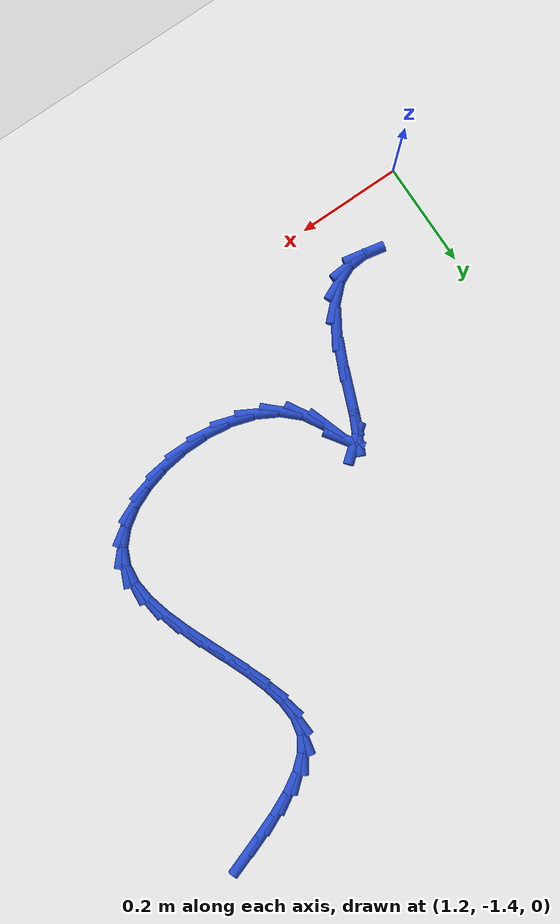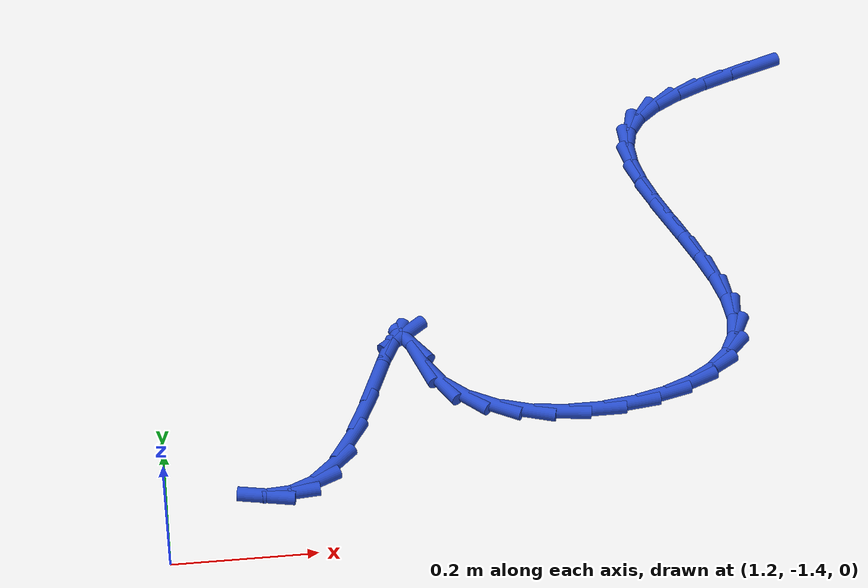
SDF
<sdf version="1.6">
 <world name="default">
  <model name="ground_plane">
   <static>1</static>
   <link name="link">
    <collision name="collision">
     <geometry><plane><normal>0 0 1</normal><size>100 100</size></plane></geometry>
     <surface><friction><ode><mu>100</mu><mu2>50</mu2></ode></friction></surface>
    </collision>
    <visual name="visual">
     <cast_shadows>0</cast_shadows>
     <geometry><plane><normal>0 0 1</normal><size>100 100</size></plane></geometry>
     <material>
      <script><uri>file://media/materials/scripts/gazebo.material</uri><name>Gazebo/WhiteGlow</name></script>
     </material>
    </visual>
   </link>
  </model>
  <model name="line">
   <link name="link_146">
    <pose>2.1206640574794777 -0.520752498557589 0.01 0 1.57 0.34572873803238874</pose>
    <collision name="collision">
     <geometry><cylinder><radius>0.01</radius><length>0.08</length></cylinder></geometry>
    </collision>
    <visual name="visual">
     <material>
      <script><name>Gazebo/Blue</name><uri>file://media/materials/scripts/gazebo.material</uri></script>
     </material>
     <geometry><cylinder><radius>0.01</radius><length>0.08</length></cylinder></geometry>
    </visual>
   </link>
   <link name="link_147">
    <pose>2.077398388420993 -0.5363366026530292 0.01 0 1.57 0.37257058284670214</pose>
    <collision name="collision">
     <geometry><cylinder><radius>0.01</radius><length>0.08</length></cylinder></geometry>
    </collision>
    <visual name="visual">
     <material>
      <script><name>Gazebo/Blue</name><uri>file://media/materials/scripts/gazebo.material</uri></script>
     </material>
     <geometry><cylinder><radius>0.01</radius><length>0.08</length></cylinder></geometry>
    </visual>
   </link>
   <link name="link_148">
    <pose>2.035174207362797 -0.552838801307023 0.01 0 1.57 0.43437580071152454</pose>
    <collision name="collision">
     <geometry><cylinder><radius>0.01</radius><length>0.08</length></cylinder></geometry>
    </collision>
    <visual name="visual">
     <material>
      <script><name>Gazebo/Blue</name><uri>file://media/materials/scripts/gazebo.material</uri></script>
     </material>
     <geometry><cylinder><radius>0.01</radius><length>0.08</length></cylinder></geometry>
    </visual>
   </link>
   <link name="link_149">
    <pose>1.9960672933489607 -0.5709815891914061 0.01 0 1.57 0.5438283993382921</pose>
    <collision name="collision">
     <geometry><cylinder><radius>0.01</radius><length>0.08</length></cylinder></geometry>
    </collision>
    <visual name="visual">
     <material>
      <script><name>Gazebo/Blue</name><uri>file://media/materials/scripts/gazebo.material</uri></script>
     </material>
     <geometry><cylinder><radius>0.01</radius><length>0.08</length></cylinder></geometry>
    </visual>
   </link>
   <link name="link_150">
    <pose>1.962153425423553 -0.5914874609780127 0.01 0 1.57 0.7246885115952378</pose>
    <collision name="collision">
     <geometry><cylinder><radius>0.01</radius><length>0.08</length></cylinder></geometry>
    </collision>
    <visual name="visual">
     <material>
      <script><name>Gazebo/Blue</name><uri>file://media/materials/scripts/gazebo.material</uri></script>
     </material>
     <geometry><cylinder><radius>0.01</radius><length>0.08</length></cylinder></geometry>
    </visual>
   </link>
   <link name="link_151">
    <pose>1.9355083826306454 -0.6150789113386786 0.01 0 1.57 1.0074835304742966</pose>
    <collision name="collision">
     <geometry><cylinder><radius>0.01</radius><length>0.08</length></cylinder></geometry>
    </collision>
    <visual name="visual">
     <material>
      <script><name>Gazebo/Blue</name><uri>file://media/materials/scripts/gazebo.material</uri></script>
     </material>
     <geometry><cylinder><radius>0.01</radius><length>0.08</length></cylinder></geometry>
    </visual>
   </link>
   <link name="link_152">
    <pose>1.9182043686012373 -0.6424771438342691 0.01 0 1.57 1.3538564457280344</pose>
    <collision name="collision">
     <geometry><cylinder><radius>0.01</radius><length>0.08</length></cylinder></geometry>
    </collision>
    <visual name="visual">
     <material>
      <script><name>Gazebo/Blue</name><uri>file://media/materials/scripts/gazebo.material</uri></script>
     </material>
     <geometry><cylinder><radius>0.01</radius><length>0.08</length></cylinder></geometry>
    </visual>
   </link>
   <link name="link_153">
    <pose>1.9112520489966103 -0.674020031962805 0.01 0 1.57 -1.517537073689646</pose>
    <collision name="collision">
     <geometry><cylinder><radius>0.01</radius><length>0.08</length></cylinder></geometry>
    </collision>
    <visual name="visual">
     <material>
      <script><name>Gazebo/Blue</name><uri>file://media/materials/scripts/gazebo.material</uri></script>
     </material>
     <geometry><cylinder><radius>0.01</radius><length>0.08</length></cylinder></geometry>
    </visual>
   </link>
   <link name="link_154">
    <pose>1.9131236863456618 -0.7091288110425901 0.01 0 1.57 -1.3430973453825548</pose>
    <collision name="collision">
     <geometry><cylinder><radius>0.01</radius><length>0.08</length></cylinder></geometry>
    </collision>
    <visual name="visual">
     <material>
      <script><name>Gazebo/Blue</name><uri>file://media/materials/scripts/gazebo.material</uri></script>
     </material>
     <geometry><cylinder><radius>0.01</radius><length>0.08</length></cylinder></geometry>
    </visual>
   </link>
   <link name="link_155">
    <pose>1.921920093076768 -0.7470905827156611 0.01 0 1.57 -1.2388759577727098</pose>
    <collision name="collision">
     <geometry><cylinder><radius>0.01</radius><length>0.08</length></cylinder></geometry>
    </collision>
    <visual name="visual">
     <material>
      <script><name>Gazebo/Blue</name><uri>file://media/materials/scripts/gazebo.material</uri></script>
     </material>
     <geometry><cylinder><radius>0.01</radius><length>0.08</length></cylinder></geometry>
    </visual>
   </link>
   <link name="link_156">
    <pose>1.9357420816183069 -0.7871924486240528 0.01 0 1.57 -1.183319060407565</pose>
    <collision name="collision">
     <geometry><cylinder><radius>0.01</radius><length>0.08</length></cylinder></geometry>
    </collision>
    <visual name="visual">
     <material>
      <script><name>Gazebo/Blue</name><uri>file://media/materials/scripts/gazebo.material</uri></script>
     </material>
     <geometry><cylinder><radius>0.01</radius><length>0.08</length></cylinder></geometry>
    </visual>
   </link>
   <link name="link_157">
    <pose>1.9526904643986547 -0.8287215104098017 0.01 0 1.57 -1.164479626951197</pose>
    <collision name="collision">
     <geometry><cylinder><radius>0.01</radius><length>0.08</length></cylinder></geometry>
    </collision>
    <visual name="visual">
     <material>
      <script><name>Gazebo/Blue</name><uri>file://media/materials/scripts/gazebo.material</uri></script>
     </material>
     <geometry><cylinder><radius>0.01</radius><length>0.08</length></cylinder></geometry>
    </visual>
   </link>
   <link name="link_158">
    <pose>1.97086605384619 -0.8709648697149444 0.01 0 1.57 -1.177991039458098</pose>
    <collision name="collision">
     <geometry><cylinder><radius>0.01</radius><length>0.08</length></cylinder></geometry>
    </collision>
    <visual name="visual">
     <material>
      <script><name>Gazebo/Blue</name><uri>file://media/materials/scripts/gazebo.material</uri></script>
     </material>
     <geometry><cylinder><radius>0.01</radius><length>0.08</length></cylinder></geometry>
    </visual>
   </link>
   <link name="link_159">
    <pose>1.988369662389289 -0.9132096281815172 0.01 0 1.57 -1.2256571544714898</pose>
    <collision name="collision">
     <geometry><cylinder><radius>0.01</radius><length>0.08</length></cylinder></geometry>
    </collision>
    <visual name="visual">
     <material>
      <script><name>Gazebo/Blue</name><uri>file://media/materials/scripts/gazebo.material</uri></script>
     </material>
     <geometry><cylinder><radius>0.01</radius><length>0.08</length></cylinder></geometry>
    </visual>
   </link>
   <link name="link_160">
    <pose>2.00330210245633 -0.9547428874515559 0.01 0 1.57 -1.3156395511689294</pose>
    <collision name="collision">
     <geometry><cylinder><radius>0.01</radius><length>0.08</length></cylinder></geometry>
    </collision>
    <visual name="visual">
     <material>
      <script><name>Gazebo/Blue</name><uri>file://media/materials/scripts/gazebo.material</uri></script>
     </material>
     <geometry><cylinder><radius>0.01</radius><length>0.08</length></cylinder></geometry>
    </visual>
   </link>
   <link name="link_161">
    <pose>2.01376418647569 -0.9948517491670973 0.01 0 1.57 -1.4634316951855642</pose>
    <collision name="collision">
     <geometry><cylinder><radius>0.01</radius><length>0.08</length></cylinder></geometry>
    </collision>
    <visual name="visual">
     <material>
      <script><name>Gazebo/Blue</name><uri>file://media/materials/scripts/gazebo.material</uri></script>
     </material>
     <geometry><cylinder><radius>0.01</radius><length>0.08</length></cylinder></geometry>
    </visual>
   </link>
   <link name="link_162">
    <pose>2.0178567268757455 -1.032823314970178 0.01 0 1.57 1.4524446346220885</pose>
    <collision name="collision">
     <geometry><cylinder><radius>0.01</radius><length>0.08</length></cylinder></geometry>
    </collision>
    <visual name="visual">
     <material>
      <script><name>Gazebo/Blue</name><uri>file://media/materials/scripts/gazebo.material</uri></script>
     </material>
     <geometry><cylinder><radius>0.01</radius><length>0.08</length></cylinder></geometry>
    </visual>
   </link>
   <link name="link_163">
    <pose>2.0136805360848746 -1.0679446865028321 0.01 0 1.57 1.144534740268404</pose>
    <collision name="collision">
     <geometry><cylinder><radius>0.01</radius><length>0.08</length></cylinder></geometry>
    </collision>
    <visual name="visual">
     <material>
      <script><name>Gazebo/Blue</name><uri>file://media/materials/scripts/gazebo.material</uri></script>
     </material>
     <geometry><cylinder><radius>0.01</radius><length>0.08</length></cylinder></geometry>
    </visual>
   </link>
   <link name="link_164">
    <pose>1.999349362781641 -1.099503916649567 0.01 0 1.57 0.8293419382922201</pose>
    <collision name="collision">
     <geometry><cylinder><radius>0.01</radius><length>0.08</length></cylinder></geometry>
    </collision>
    <visual name="visual">
     <material>
      <script><name>Gazebo/Blue</name><uri>file://media/materials/scripts/gazebo.material</uri></script>
     </material>
     <geometry><cylinder><radius>0.01</radius><length>0.08</length></cylinder></geometry>
    </visual>
   </link>
   <link name="link_165">
    <pose>1.974275292103041 -1.126884528988578 0.01 0 1.57 0.5897148592662591</pose>
    <collision name="collision">
     <geometry><cylinder><radius>0.01</radius><length>0.08</length></cylinder></geometry>
    </collision>
    <visual name="visual">
     <material>
      <script><name>Gazebo/Blue</name><uri>file://media/materials/scripts/gazebo.material</uri></script>
     </material>
     <geometry><cylinder><radius>0.01</radius><length>0.08</length></cylinder></geometry>
    </visual>
   </link>
   <link name="link_166">
    <pose>1.9402598035749328 -1.1496457466544596 0.01 0 1.57 0.408851442265392</pose>
    <collision name="collision">
     <geometry><cylinder><radius>0.01</radius><length>0.08</length></cylinder></geometry>
    </collision>
    <visual name="visual">
     <material>
      <script><name>Gazebo/Blue</name><uri>file://media/materials/scripts/gazebo.material</uri></script>
     </material>
     <geometry><cylinder><radius>0.01</radius><length>0.08</length></cylinder></geometry>
    </visual>
   </link>
   <link name="link_167">
    <pose>1.899361314380405 -1.1673656862020843 0.01 0 1.57 0.26190789384535657</pose>
    <collision name="collision">
     <geometry><cylinder><radius>0.01</radius><length>0.08</length></cylinder></geometry>
    </collision>
    <visual name="visual">
     <material>
      <script><name>Gazebo/Blue</name><uri>file://media/materials/scripts/gazebo.material</uri></script>
     </material>
     <geometry><cylinder><radius>0.01</radius><length>0.08</length></cylinder></geometry>
    </visual>
   </link>
   <link name="link_168">
    <pose>1.8536382417025445 -1.1796224641863242 0.01 0 1.57 0.1306564969552809</pose>
    <collision name="collision">
     <geometry><cylinder><radius>0.01</radius><length>0.08</length></cylinder></geometry>
    </collision>
    <visual name="visual">
     <material>
      <script><name>Gazebo/Blue</name><uri>file://media/materials/scripts/gazebo.material</uri></script>
     </material>
     <geometry><cylinder><radius>0.01</radius><length>0.08</length></cylinder></geometry>
    </visual>
   </link>
   <link name="link_169">
    <pose>1.8051490027244401 -1.185994197162051 0.01 0 1.57 0.001317244959784238</pose>
    <collision name="collision">
     <geometry><cylinder><radius>0.01</radius><length>0.08</length></cylinder></geometry>
    </collision>
    <visual name="visual">
     <material>
      <script><name>Gazebo/Blue</name><uri>file://media/materials/scripts/gazebo.material</uri></script>
     </material>
     <geometry><cylinder><radius>0.01</radius><length>0.08</length></cylinder></geometry>
    </visual>
   </link>
   <link name="link_170">
    <pose>1.7559520146291776 -1.1860590016841375 0.01 0 1.57 -0.13838913685248053</pose>
    <collision name="collision">
     <geometry><cylinder><radius>0.01</radius><length>0.08</length></cylinder></geometry>
    </collision>
    <visual name="visual">
     <material>
      <script><name>Gazebo/Blue</name><uri>file://media/materials/scripts/gazebo.material</uri></script>
     </material>
     <geometry><cylinder><radius>0.01</radius><length>0.08</length></cylinder></geometry>
    </visual>
   </link>
   <link name="link_171">
    <pose>1.7081056945998487 -1.1793949943074555 0.01 0 1.57 -0.30140944871509584</pose>
    <collision name="collision">
     <geometry><cylinder><radius>0.01</radius><length>0.08</length></cylinder></geometry>
    </collision>
    <visual name="visual">
     <material>
      <script><name>Gazebo/Blue</name><uri>file://media/materials/scripts/gazebo.material</uri></script>
     </material>
     <geometry><cylinder><radius>0.01</radius><length>0.08</length></cylinder></geometry>
    </visual>
   </link>
   <link name="link_172">
    <pose>1.6636684598195388 -1.165580291586877 0.01 0 1.57 -0.5019350937671013</pose>
    <collision name="collision">
     <geometry><cylinder><radius>0.01</radius><length>0.08</length></cylinder></geometry>
    </collision>
    <visual name="visual">
     <material>
      <script><name>Gazebo/Blue</name><uri>file://media/materials/scripts/gazebo.material</uri></script>
     </material>
     <geometry><cylinder><radius>0.01</radius><length>0.08</length></cylinder></geometry>
    </visual>
   </link>
   <link name="link_173">
    <pose>1.6246987274713365 -1.1441930100772744 0.01 0 1.57 -0.7515097836951473</pose>
    <collision name="collision">
     <geometry><cylinder><radius>0.01</radius><length>0.08</length></cylinder></geometry>
    </collision>
    <visual name="visual">
     <material>
      <script><name>Gazebo/Blue</name><uri>file://media/materials/scripts/gazebo.material</uri></script>
     </material>
     <geometry><cylinder><radius>0.01</radius><length>0.08</length></cylinder></geometry>
    </visual>
   </link>
   <link name="link_174">
    <pose>1.593254914738329 -1.1148112663335201 0.01 0 1.57 -1.0458649811744283</pose>
    <collision name="collision">
     <geometry><cylinder><radius>0.01</radius><length>0.08</length></cylinder></geometry>
    </collision>
    <visual name="visual">
     <material>
      <script><name>Gazebo/Blue</name><uri>file://media/materials/scripts/gazebo.material</uri></script>
     </material>
     <geometry><cylinder><radius>0.01</radius><length>0.08</length></cylinder></geometry>
    </visual>
   </link>
   <link name="link_175">
    <pose>1.5713832930697207 -1.0770448198372078 0.01 0 1.57 -1.2450065934365189</pose>
    <collision name="collision">
     <geometry><cylinder><radius>0.01</radius><length>0.08</length></cylinder></geometry>
    </collision>
    <visual name="visual">
     <material>
      <script><name>Gazebo/Blue</name><uri>file://media/materials/scripts/gazebo.material</uri></script>
     </material>
     <geometry><cylinder><radius>0.01</radius><length>0.08</length></cylinder></geometry>
    </visual>
   </link>
   <link name="link_176">
    <pose>1.558220871534311 -1.03808284661152 0.01 0 1.57 -0.9743026126118307</pose>
    <collision name="collision">
     <geometry><cylinder><radius>0.01</radius><length>0.08</length></cylinder></geometry>
    </collision>
    <visual name="visual">
     <material>
      <script><name>Gazebo/Blue</name><uri>file://media/materials/scripts/gazebo.material</uri></script>
     </material>
     <geometry><cylinder><radius>0.01</radius><length>0.08</length></cylinder></geometry>
    </visual>
   </link>
   <link name="link_177">
    <pose>1.5466035208603726 -1.0209733898539795 0.01 0 1.57 0.6815107495792929</pose>
    <collision name="collision">
     <geometry><cylinder><radius>0.01</radius><length>0.08</length></cylinder></geometry>
    </collision>
    <visual name="visual">
     <material>
      <script><name>Gazebo/Blue</name><uri>file://media/materials/scripts/gazebo.material</uri></script>
     </material>
     <geometry><cylinder><radius>0.01</radius><length>0.08</length></cylinder></geometry>
    </visual>
   </link>
   <link name="link_178">
    <pose>1.5330820834319487 -1.0319414811211347 0.01 0 1.57 1.115050319586273</pose>
    <collision name="collision">
     <geometry><cylinder><radius>0.01</radius><length>0.08</length></cylinder></geometry>
    </collision>
    <visual name="visual">
     <material>
      <script><name>Gazebo/Blue</name><uri>file://media/materials/scripts/gazebo.material</uri></script>
     </material>
     <geometry><cylinder><radius>0.01</radius><length>0.08</length></cylinder></geometry>
    </visual>
   </link>
   <link name="link_179">
    <pose>1.5174226701260995 -1.063888927259134 0.01 0 1.57 1.1951782070708608</pose>
    <collision name="collision">
     <geometry><cylinder><radius>0.01</radius><length>0.08</length></cylinder></geometry>
    </collision>
    <visual name="visual">
     <material>
      <script><name>Gazebo/Blue</name><uri>file://media/materials/scripts/gazebo.material</uri></script>
     </material>
     <geometry><cylinder><radius>0.01</radius><length>0.08</length></cylinder></geometry>
    </visual>
   </link>
   <link name="link_180">
    <pose>1.4994557475530383 -1.109450861927711 0.01 0 1.57 1.1949683873469088</pose>
    <collision name="collision">
     <geometry><cylinder><radius>0.01</radius><length>0.08</length></cylinder></geometry>
    </collision>
    <visual name="visual">
     <material>
      <script><name>Gazebo/Blue</name><uri>file://media/materials/scripts/gazebo.material</uri></script>
     </material>
     <geometry><cylinder><radius>0.01</radius><length>0.08</length></cylinder></geometry>
    </visual>
   </link>
   <link name="link_181">
    <pose>1.4790117823229785 -1.1612624187865976 0.01 0 1.57 1.1434046364931023</pose>
    <collision name="collision">
     <geometry><cylinder><radius>0.01</radius><length>0.08</length></cylinder></geometry>
    </collision>
    <visual name="visual">
     <material>
      <script><name>Gazebo/Blue</name><uri>file://media/materials/scripts/gazebo.material</uri></script>
     </material>
     <geometry><cylinder><radius>0.01</radius><length>0.08</length></cylinder></geometry>
    </visual>
   </link>
   <link name="link_182">
    <pose>1.4559212410461329 -1.211958731495528 0.01 0 1.57 1.020389673473274</pose>
    <collision name="collision">
     <geometry><cylinder><radius>0.01</radius><length>0.08</length></cylinder></geometry>
    </collision>
    <visual name="visual">
     <material>
      <script><name>Gazebo/Blue</name><uri>file://media/materials/scripts/gazebo.material</uri></script>
     </material>
     <geometry><cylinder><radius>0.01</radius><length>0.08</length></cylinder></geometry>
    </visual>
   </link>
   <link name="link_183">
    <pose>1.4300145943830749 -1.2541750096040396 0.01 0 1.57 0.7729169514898808</pose>
    <collision name="collision">
     <geometry><cylinder><radius>0.01</radius><length>0.08</length></cylinder></geometry>
    </collision>
    <visual name="visual">
     <material>
      <script><name>Gazebo/Blue</name><uri>file://media/materials/scripts/gazebo.material</uri></script>
     </material>
     <geometry><cylinder><radius>0.01</radius><length>0.08</length></cylinder></geometry>
    </visual>
   </link>
   <link name="link_184">
    <pose>1.4012140576202856 -1.2822654412604342 0.01 0 1.57 0.43156072109628224</pose>
    <collision name="collision">
     <geometry><cylinder><radius>0.01</radius><length>0.08</length></cylinder></geometry>
    </collision>
    <visual name="visual">
     <material>
      <script><name>Gazebo/Blue</name><uri>file://media/materials/scripts/gazebo.material</uri></script>
     </material>
     <geometry><cylinder><radius>0.01</radius><length>0.08</length></cylinder></geometry>
    </visual>
   </link>
   <link name="link_185">
    <pose>1.3697706822270712 -1.2967454731627766 0.01 0 1.57 0.0817142958048096</pose>
    <collision name="collision">
     <geometry><cylinder><radius>0.01</radius><length>0.08</length></cylinder></geometry>
    </collision>
    <visual name="visual">
     <material>
      <script><name>Gazebo/Blue</name><uri>file://media/materials/scripts/gazebo.material</uri></script>
     </material>
     <geometry><cylinder><radius>0.01</radius><length>0.08</length></cylinder></geometry>
    </visual>
   </link>
   <link name="link_186">
    <pose>1.3360091658798081 -1.2995104285150003 0.01 0 1.57 -0.194807336062111</pose>
    <collision name="collision">
     <geometry><cylinder><radius>0.01</radius><length>0.08</length></cylinder></geometry>
    </collision>
    <visual name="visual">
     <material>
      <script><name>Gazebo/Blue</name><uri>file://media/materials/scripts/gazebo.material</uri></script>
     </material>
     <geometry><cylinder><radius>0.01</radius><length>0.08</length></cylinder></geometry>
    </visual>
   </link>
  </model>
 </world>
</sdf>
